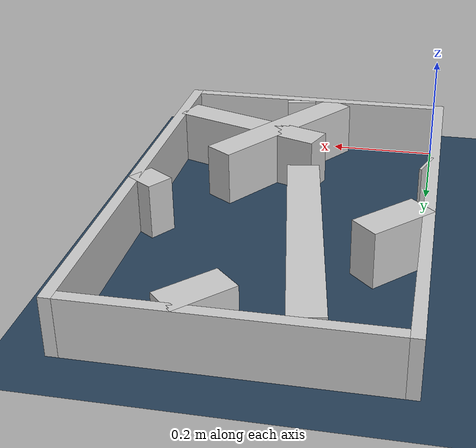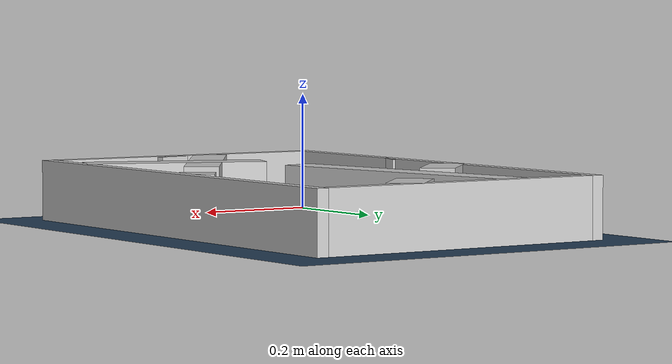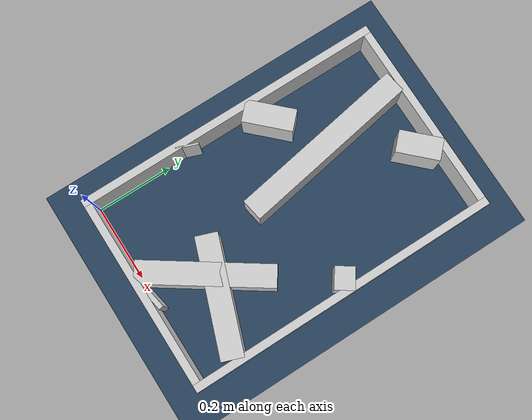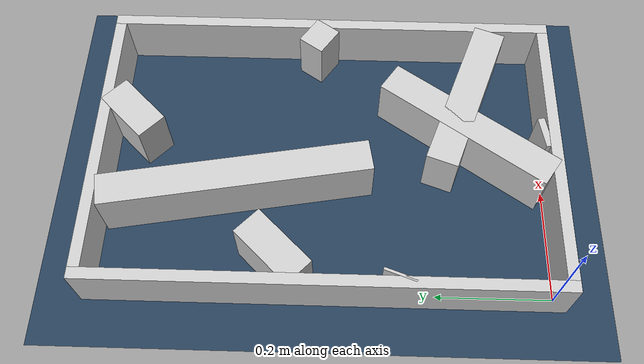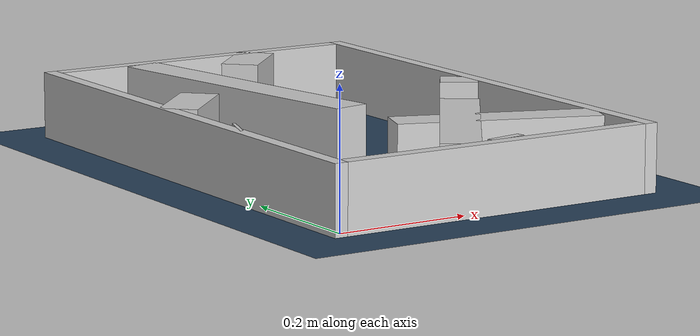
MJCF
<?xml version="1.0" ?>
<mujoco model="generated_real_template">
  <compiler angle="degree"/>
  <option timestep="0.002" integrator="implicitfast" iterations="100" cone="elliptic"/>
  <default>
    <geom density="1"/>
  </default>
  <asset>
    <texture builtin="gradient" height="3072" rgb1="0.3 0.5 0.7" rgb2="0 0 0" type="skybox" width="512"/>
    <texture builtin="checker" height="300" mark="edge" markrgb="0.8 0.8 0.8" name="groundplane" rgb1="0.2 0.3 0.4" rgb2="0.1 0.2 0.3" type="2d" width="300"/>
    <material name="groundplane" reflectance="0.2" texrepeat="5 5" texture="groundplane" texuniform="true"/>
  </asset>
  <worldbody>
    <light dir="0 0 -1" directional="true" pos="0 0 1.5"/>
    <geom name="floor" type="plane" condim="4" friction="0.5 0.005 0.001" material="groundplane" size="0 0 0.05"/>
    <body name="walls">
      <geom name="wall_boundary_left" type="box" condim="4" friction="1.0 0.005 0.0001" rgba="0.8 0.8 0.8 1" pos="-0.010000 0.387500 0.050000" euler="0 0 0.000000" size="0.010000 0.407500 0.050000"/>
      <geom name="wall_boundary_right" type="box" condim="4" friction="1.0 0.005 0.0001" rgba="0.8 0.8 0.8 1" pos="0.500000 0.387500 0.050000" euler="0 0 0.000000" size="0.010000 0.407500 0.050000"/>
      <geom name="wall_boundary_bottom" type="box" condim="4" friction="1.0 0.005 0.0001" rgba="0.8 0.8 0.8 1" pos="0.245000 -0.010000 0.050000" euler="0 0 0.000000" size="0.245000 0.010000 0.050000"/>
      <geom name="wall_boundary_top" type="box" condim="4" friction="1.0 0.005 0.0001" rgba="0.8 0.8 0.8 1" pos="0.245000 0.785000 0.050000" euler="0 0 0.000000" size="0.245000 0.010000 0.050000"/>
      <geom name="wall_inner_1_1" type="box" condim="4" friction="1.0 0.005 0.0001" rgba="0.8 0.8 0.8 1" pos="0.178273 0.542629 0.050000" euler="0 0 -80.112234" size="0.235875 0.028500 0.050000"/>
      <geom name="wall_inner_1_2" type="box" condim="4" friction="1.0 0.005 0.0001" rgba="0.8 0.8 0.8 1" pos="0.271761 0.006293 0.050000" euler="0 0 -80.112234" size="0.006388 0.028500 0.050000"/>
      <geom name="wall_inner_2_1" type="box" condim="4" friction="1.0 0.005 0.0001" rgba="0.8 0.8 0.8 1" pos="0.302331 0.735433 0.050000" euler="0 0 -134.177247" size="0.055170 0.028500 0.050000"/>
      <geom name="wall_inner_2_2" type="box" condim="4" friction="1.0 0.005 0.0001" rgba="0.8 0.8 0.8 1" pos="0.044906 0.470507 0.050000" euler="0 0 -134.177247" size="0.063806 0.028500 0.050000"/>
      <geom name="wall_inner_3_1" type="box" condim="4" friction="1.0 0.005 0.0001" rgba="0.8 0.8 0.8 1" pos="0.002306 0.263628 0.050000" euler="0 0 -19.801425" size="0.002451 0.028500 0.050000"/>
      <geom name="wall_inner_3_2" type="box" condim="4" friction="1.0 0.005 0.0001" rgba="0.8 0.8 0.8 1" pos="0.349324 0.138684 0.050000" euler="0 0 -19.801425" size="0.149516 0.028500 0.050000"/>
      <geom name="wall_inner_4_1" type="box" condim="4" friction="1.0 0.005 0.0001" rgba="0.8 0.8 0.8 1" pos="0.288301 0.138910 0.050000" euler="0 0 55.625171" size="0.168302 0.028500 0.050000"/>
      <geom name="wall_inner_4_2" type="box" condim="4" friction="1.0 0.005 0.0001" rgba="0.8 0.8 0.8 1" pos="0.472381 0.408006 0.050000" euler="0 0 55.625171" size="0.024965 0.028500 0.050000"/>
    </body>
  </worldbody>
</mujoco>
